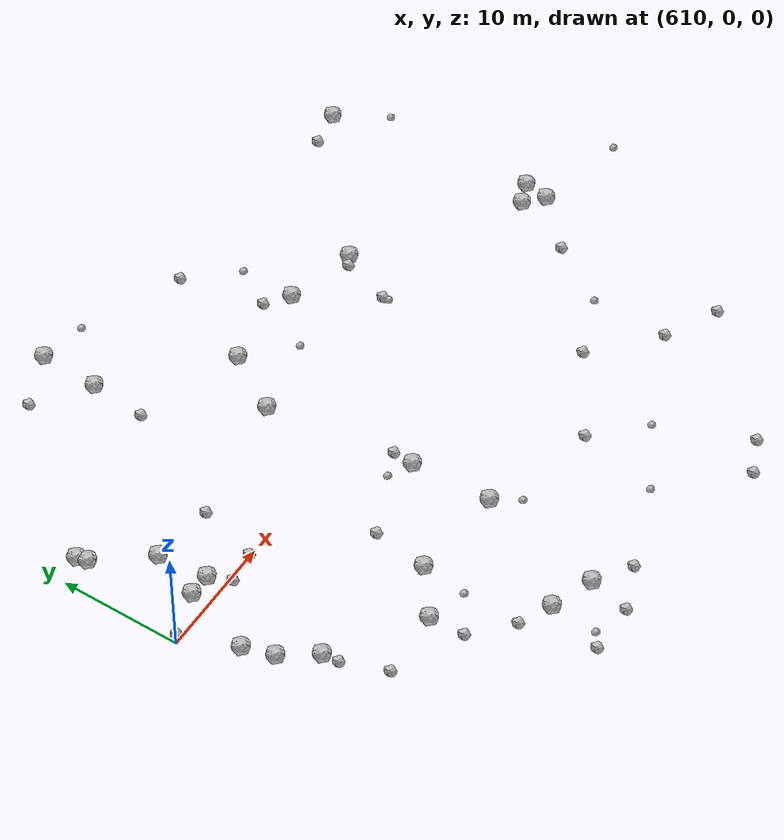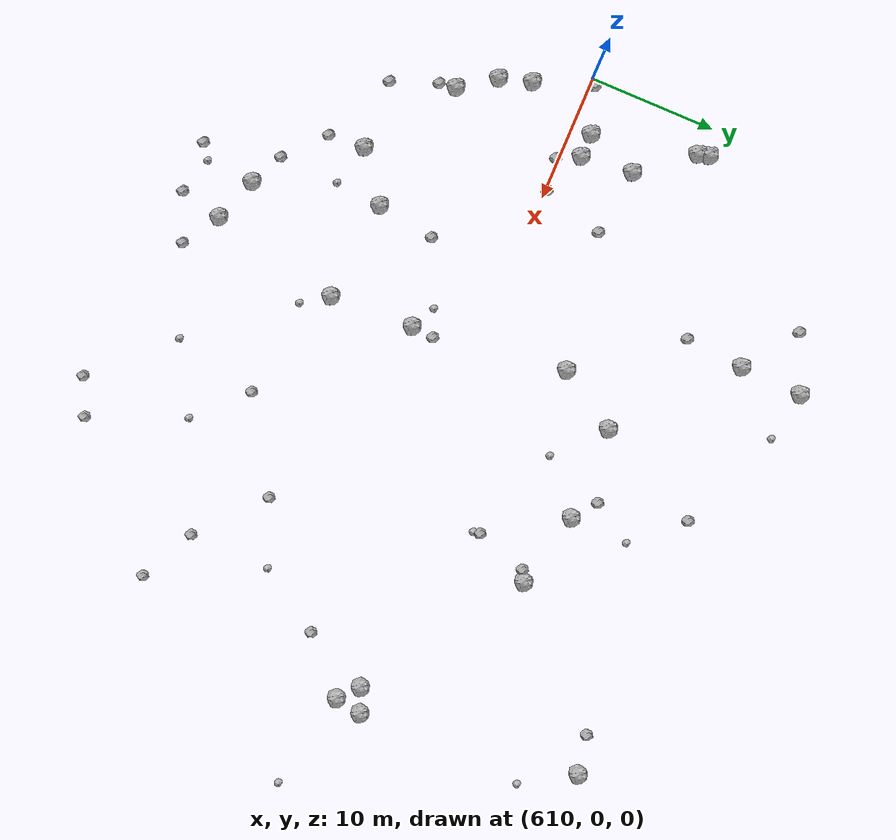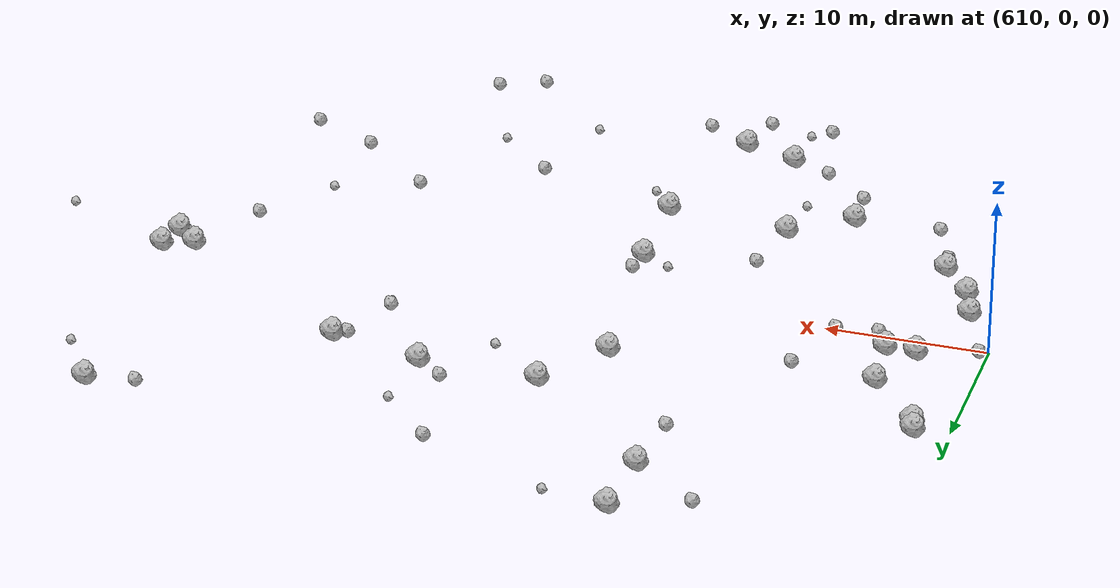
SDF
<sdf version="1.6">
 <world name="default">
  <include><uri>model://sun</uri></include>
  <model name="rock1_16_3">
   <include><uri>model://rock1</uri><pose>612.9299217488899 -6.713451842903567 0.5 0 0 0</pose></include>
  </model>
  <model name="rock1_16_4">
   <include><uri>model://rock1</uri><pose>631.5829361750052 6.810761019768378 0.5 0 0 0</pose></include>
  </model>
  <model name="rock1_16_5">
   <include><uri>model://rock1</uri><pose>641.8954091193187 11.53854000954474 0.5 0 0 0</pose></include>
  </model>
  <model name="rock1_16_6">
   <include><uri>model://rock1</uri><pose>615.6164706915793 5.570157484655155 0.5 0 0 0</pose></include>
  </model>
  <model name="rock1_16_7">
   <include><uri>model://rock1</uri><pose>631.0796952408978 -22.34558933716793 0.5 0 0 0</pose></include>
  </model>
  <model name="rock1_16_8">
   <include><uri>model://rock1</uri><pose>633.0693992194225 -5.418931609142405 0.5 0 0 0</pose></include>
  </model>
  <model name="rock1_16_9">
   <include><uri>model://rock1</uri><pose>633.3503226985171 -12.06541016346068 0.5 0 0 0</pose></include>
  </model>
  <model name="rock1_16_10">
   <include><uri>model://rock1</uri><pose>626.3600836995306 24.038104117141586 0.5 0 0 0</pose></include>
  </model>
  <model name="rock1_16_11">
   <include><uri>model://rock1</uri><pose>661.975329782324 2.4238759403932377 0.5 0 0 0</pose></include>
  </model>
  <model name="rock1_16_12">
   <include><uri>model://rock1</uri><pose>627.5946903657436 -21.060486751088934 0.5 0 0 0</pose></include>
  </model>
  <model name="rock1_16_13">
   <include><uri>model://rock1</uri><pose>614.8527547187834 -9.456263462554311 0.5 0 0 0</pose></include>
  </model>
  <model name="rock1_16_14">
   <include><uri>model://rock1</uri><pose>661.6053202214064 0.3255991391202677 0.5 0 0 0</pose></include>
  </model>
  <model name="rock1_16_15">
   <include><uri>model://rock1</uri><pose>612.1520132944956 10.507013458324202 0.5 0 0 0</pose></include>
  </model>
  <model name="rock1_16_16">
   <include><uri>model://rock1</uri><pose>616.0117288226386 1.4626635522365774 0.5 0 0 0</pose></include>
  </model>
  <model name="rock1_16_17">
   <include><uri>model://rock1</uri><pose>621.8277227499976 -14.157584482348387 0.5 0 0 0</pose></include>
  </model>
  <model name="rock1_16_18">
   <include><uri>model://rock1</uri><pose>660.1110416764554 1.6801771747796366 0.5 0 0 0</pose></include>
  </model>
  <model name="rock1_16_19">
   <include><uri>model://rock1</uri><pose>612.1850134333417 -4.207436907184793 0.5 0 0 0</pose></include>
  </model>
  <model name="rock1_16_20">
   <include><uri>model://rock1</uri><pose>625.4804084529534 -11.321636181261496 0.5 0 0 0</pose></include>
  </model>
  <model name="rock1_16_21">
   <include><uri>model://rock1</uri><pose>626.150868245362 19.084676777505358 0.5 0 0 0</pose></include>
  </model>
  <model name="rock1_16_22">
   <include><uri>model://rock1</uri><pose>634.5085588732965 11.511716261314916 0.5 0 0 0</pose></include>
  </model>
  <model name="rock1_16_23">
   <include><uri>model://rock1</uri><pose>612.3903166598283 9.646930538377042 0.5 0 0 0</pose></include>
  </model>
  <model name="rock1_16_24">
   <include><uri>model://rock1</uri><pose>647.8436554391062 10.088229969249 0.5 0 0 0</pose></include>
  </model>
  <model name="rock1_16_25">
   <include><uri>model://rock1</uri><pose>659.7997275317512 19.628478619180086 0.5 0 0 0</pose></include>
  </model>
  <model name="rock1_16_26">
   <include><uri>model://rock1</uri><pose>614.1424267914525 1.4987900393088012 0.5 0 0 0</pose></include>
  </model>
  <model name="rock2_16_0">
   <include><uri>model://rock2</uri><pose>656.7605539807429 19.125615959451537 0.3 0 0 0</pose></include>
  </model>
  <model name="rock2_16_1">
   <include><uri>model://rock2</uri><pose>626.2052036473456 -25.70929162539424 0.3 0 0 0</pose></include>
  </model>
  <model name="rock2_16_2">
   <include><uri>model://rock2</uri><pose>646.9851992451338 9.650411831362561 0.3 0 0 0</pose></include>
  </model>
  <model name="rock2_16_3">
   <include><uri>model://rock2</uri><pose>638.6129773963772 19.94533859440522 0.3 0 0 0</pose></include>
  </model>
  <model name="rock2_16_4">
   <include><uri>model://rock2</uri><pose>646.3617517128671 -27.24179170213815 0.3 0 0 0</pose></include>
  </model>
  <model name="rock2_16_5">
   <include><uri>model://rock2</uri><pose>610.5427668763904 0.3813137483654181 0.3 0 0 0</pose></include>
  </model>
  <model name="rock2_16_6">
   <include><uri>model://rock2</uri><pose>621.9499528933937 -17.037255763824163 0.3 0 0 0</pose></include>
  </model>
  <model name="rock2_16_7">
   <include><uri>model://rock2</uri><pose>620.8096699662614 4.99570029848276 0.3 0 0 0</pose></include>
  </model>
  <model name="rock2_16_8">
   <include><uri>model://rock2</uri><pose>621.9144188304194 22.235539698457913 0.3 0 0 0</pose></include>
  </model>
  <model name="rock2_16_9">
   <include><uri>model://rock2</uri><pose>633.2129019189128 -3.6060360757038943 0.3 0 0 0</pose></include>
  </model>
  <model name="rock2_16_10">
   <include><uri>model://rock2</uri><pose>616.7967401577105 -0.23938445797650942 0.3 0 0 0</pose></include>
  </model>
  <model name="rock2_16_11">
   <include><uri>model://rock2</uri><pose>640.0246846099392 13.01493079781875 0.3 0 0 0</pose></include>
  </model>
  <model name="rock2_16_12">
   <include><uri>model://rock2</uri><pose>626.150502514568 -6.688319922233536 0.3 0 0 0</pose></include>
  </model>
  <model name="rock2_16_13">
   <include><uri>model://rock2</uri><pose>645.6946318377962 5.58477088359875 0.3 0 0 0</pose></include>
  </model>
  <model name="rock2_16_14">
   <include><uri>model://rock2</uri><pose>649.4422168276446 -10.423036346807667 0.3 0 0 0</pose></include>
  </model>
  <model name="rock2_16_15">
   <include><uri>model://rock2</uri><pose>614.9832939477059 -10.75716178824004 0.3 0 0 0</pose></include>
  </model>
  <model name="rock2_16_16">
   <include><uri>model://rock2</uri><pose>624.9481716687326 -19.788561938540838 0.3 0 0 0</pose></include>
  </model>
  <model name="rock2_16_17">
   <include><uri>model://rock2</uri><pose>633.9651420779355 -24.192412481781798 0.3 0 0 0</pose></include>
  </model>
  <model name="rock2_16_18">
   <include><uri>model://rock2</uri><pose>657.7175301160213 -3.4309500112157636 0.3 0 0 0</pose></include>
  </model>
  <model name="rock2_16_19">
   <include><uri>model://rock2</uri><pose>619.3767912999696 0.09485880424921334 0.3 0 0 0</pose></include>
  </model>
  <model name="rock2_16_20">
   <include><uri>model://rock2</uri><pose>616.3244820172788 -14.34907246161135 0.3 0 0 0</pose></include>
  </model>
  <model name="rock2_16_21">
   <include><uri>model://rock2</uri><pose>642.4812414848243 -14.821475790729561 0.3 0 0 0</pose></include>
  </model>
  <model name="rock2_16_22">
   <include><uri>model://rock2</uri><pose>658.7206823407199 -17.039366025023767 0.3 0 0 0</pose></include>
  </model>
  <model name="rock2_16_23">
   <include><uri>model://rock2</uri><pose>630.2919151004428 -25.713158955101875 0.3 0 0 0</pose></include>
  </model>
  <model name="rock2_16_24">
   <include><uri>model://rock2</uri><pose>649.2260292733431 -25.922220011526072 0.3 0 0 0</pose></include>
  </model>
  <model name="rock2_16_25">
   <include><uri>model://rock2</uri><pose>625.7192714700874 14.47851652161755 0.3 0 0 0</pose></include>
  </model>
  <model name="rock2_16_26">
   <include><uri>model://rock2</uri><pose>654.3925972106974 -14.834944030720827 0.3 0 0 0</pose></include>
  </model>
  <model name="rock3_16_0">
   <include><uri>model://rock3</uri><pose>631.6443946788611 6.543387107848005 0.2 0 0 0</pose></include>
  </model>
  <model name="rock3_16_1">
   <include><uri>model://rock3</uri><pose>669.3238451610168 -1.296008974425348 0.2 0 0 0</pose></include>
  </model>
  <model name="rock3_16_2">
   <include><uri>model://rock3</uri><pose>642.0065370128646 16.216898572708338 0.2 0 0 0</pose></include>
  </model>
  <model name="rock3_16_3">
   <include><uri>model://rock3</uri><pose>645.7717763173038 5.024051255103053 0.2 0 0 0</pose></include>
  </model>
  <model name="rock3_16_4">
   <include><uri>model://rock3</uri><pose>627.3679642367927 -24.918809117090294 0.2 0 0 0</pose></include>
  </model>
  <model name="rock3_16_5">
   <include><uri>model://rock3</uri><pose>646.2031931861685 -18.5236788677884 0.2 0 0 0</pose></include>
  </model>
  <model name="rock3_16_6">
   <include><uri>model://rock3</uri><pose>638.103526193449 8.193929486046457 0.2 0 0 0</pose></include>
  </model>
  <model name="rock3_16_7">
   <include><uri>model://rock3</uri><pose>640.8349057653796 -21.581072827237602 0.2 0 0 0</pose></include>
  </model>
  <model name="rock3_16_8">
   <include><uri>model://rock3</uri><pose>625.0784015652215 -15.081952339237022 0.2 0 0 0</pose></include>
  </model>
  <model name="rock3_16_9">
   <include><uri>model://rock3</uri><pose>631.12996978406 -4.439459686428872 0.2 0 0 0</pose></include>
  </model>
  <model name="rock3_16_10">
   <include><uri>model://rock3</uri><pose>662.3059047915606 15.633040420859786 0.2 0 0 0</pose></include>
  </model>
  <model name="rock3_16_11">
   <include><uri>model://rock3</uri><pose>634.7447216800794 -14.140658308115295 0.2 0 0 0</pose></include>
  </model>
  <model name="rock3_16_12">
   <include><uri>model://rock3</uri><pose>654.4870362152453 -8.449651513623607 0.2 0 0 0</pose></include>
  </model>
  <model name="rock3_16_13">
   <include><uri>model://rock3</uri><pose>630.2984746953694 23.40223853471842 0.2 0 0 0</pose></include>
  </model>
 </world>
</sdf>
